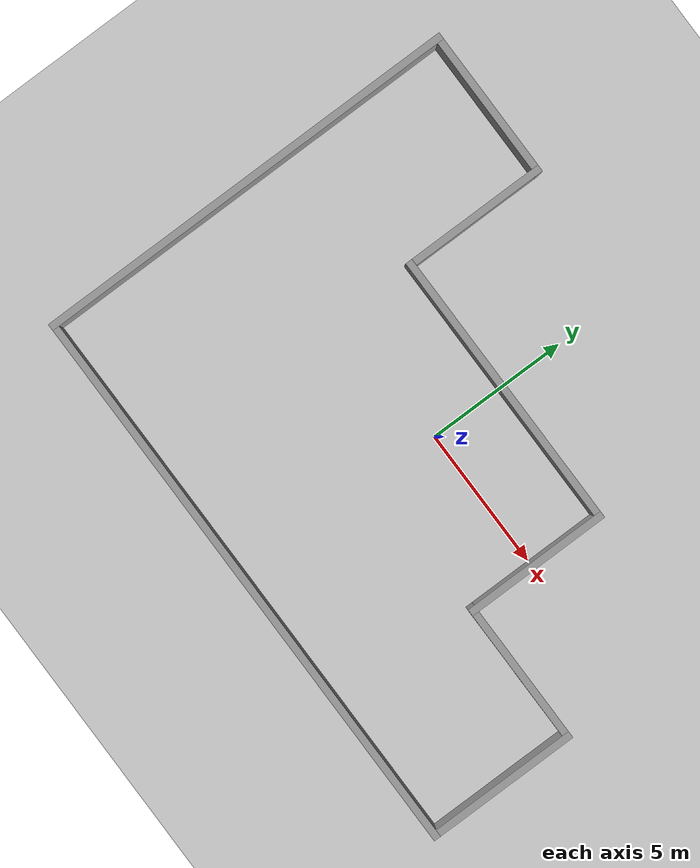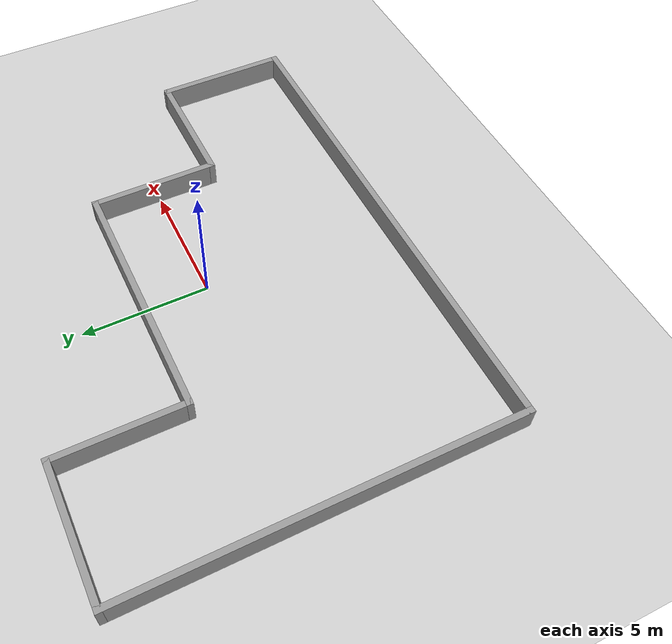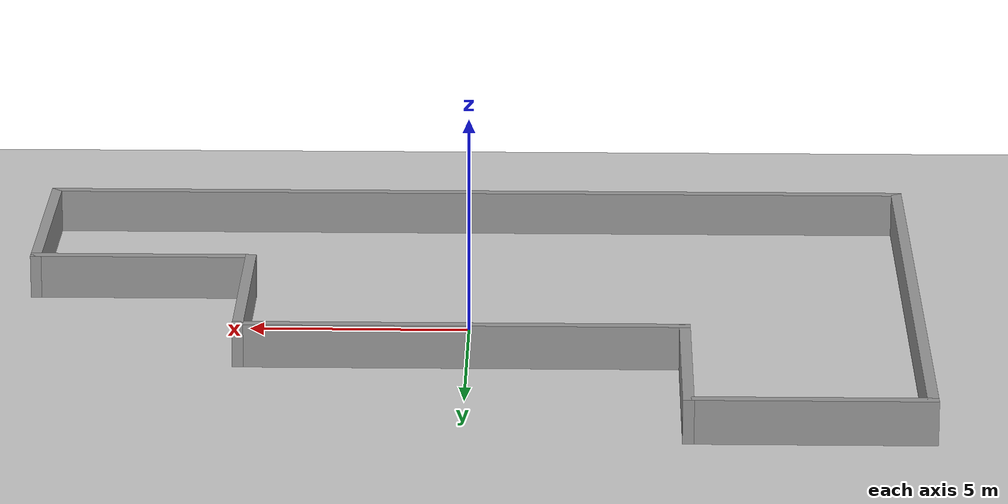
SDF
<?xml version="1.0" encoding="utf-8"?>
<sdf version='1.7'>
  <world name='default'>
    <gravity>0 0 -9.8</gravity>
    <magnetic_field>6e-06 2.3e-05 -4.2e-05</magnetic_field>
    <atmosphere type='adiabatic'/>
    <physics name='default_physics' default='0' type='ode'>
      <max_step_size>0.001</max_step_size>
      <real_time_factor>1</real_time_factor>
      <real_time_update_rate>1000</real_time_update_rate>
    </physics>

    <!-- A global light source -->
    <include>
      <uri>model://sun</uri>
    </include>
    <!-- A ground plane -->
    <include>
      <uri>model://ground_plane</uri>
    </include>

    <model name='asymmetric2'>
      <pose>0 0 0 0 0 0</pose>
      <link name='Wall_0'>
        <collision name='Wall_0_Collision'>
          <geometry>
            <box>
              <size>15.5 0.25 1</size>
            </box>
          </geometry>
          <pose>0 0 0.5 0 -0 0</pose>
        </collision>
        <visual name='Wall_0_Visual'>
          <pose>0 0 0.5 0 -0 0</pose>
          <geometry>
            <box>
              <size>15.5 0.25 1</size>
            </box>
          </geometry>
          <material>
            <script>
              <uri>file://media/materials/scripts/gazebo.material</uri>
              <name>Gazebo/Grey</name>
            </script>
            <ambient>1 1 1 1</ambient>
          </material>
          <meta>
            <layer>0</layer>
          </meta>
        </visual>
        <pose>-10.125 0 0 0 -0 -1.5708</pose>
      </link>
      <link name='Wall_10'>
        <collision name='Wall_10_Collision'>
          <geometry>
            <box>
              <size>5.25 0.25 1</size>
            </box>
          </geometry>
          <pose>0 0 0.5 0 -0 0</pose>
        </collision>
        <visual name='Wall_10_Visual'>
          <pose>0 0 0.5 0 -0 0</pose>
          <geometry>
            <box>
              <size>5.25 0.25 1</size>
            </box>
          </geometry>
          <material>
            <script>
              <uri>file://media/materials/scripts/gazebo.material</uri>
              <name>Gazebo/Grey</name>
            </script>
            <ambient>1 1 1 1</ambient>
          </material>
          <meta>
            <layer>0</layer>
          </meta>
        </visual>
        <pose>5.125 0.125 0 0 -0 1.5708</pose>
      </link>
      <link name='Wall_12'>
        <collision name='Wall_12_Collision'>
          <geometry>
            <box>
              <size>10.25 0.25 1</size>
            </box>
          </geometry>
          <pose>0 0 0.5 0 -0 0</pose>
        </collision>
        <visual name='Wall_12_Visual'>
          <pose>0 0 0.5 0 -0 0</pose>
          <geometry>
            <box>
              <size>10.25 0.25 1</size>
            </box>
          </geometry>
          <material>
            <script>
              <uri>file://media/materials/scripts/gazebo.material</uri>
              <name>Gazebo/Grey</name>
            </script>
            <ambient>1 1 1 1</ambient>
          </material>
          <meta>
            <layer>0</layer>
          </meta>
        </visual>
        <pose>0.125 2.625 0 0 -0 3.14159</pose>
      </link>
      <link name='Wall_14'>
        <collision name='Wall_14_Collision'>
          <geometry>
            <box>
              <size>5.25 0.25 1</size>
            </box>
          </geometry>
          <pose>0 0 0.5 0 -0 0</pose>
        </collision>
        <visual name='Wall_14_Visual'>
          <pose>0 0 0.5 0 -0 0</pose>
          <geometry>
            <box>
              <size>5.25 0.25 1</size>
            </box>
          </geometry>
          <material>
            <script>
              <uri>file://media/materials/scripts/gazebo.material</uri>
              <name>Gazebo/Grey</name>
            </script>
            <ambient>1 1 1 1</ambient>
          </material>
          <meta>
            <layer>0</layer>
          </meta>
        </visual>
        <pose>-4.875 5.125 0 0 -0 1.5708</pose>
      </link>
      <link name='Wall_16'>
        <collision name='Wall_16_Collision'>
          <geometry>
            <box>
              <size>5.5 0.25 1</size>
            </box>
          </geometry>
          <pose>0 0 0.5 0 -0 0</pose>
        </collision>
        <visual name='Wall_16_Visual'>
          <pose>0 0 0.5 0 -0 0</pose>
          <geometry>
            <box>
              <size>5.5 0.25 1</size>
            </box>
          </geometry>
          <material>
            <script>
              <uri>file://media/materials/scripts/gazebo.material</uri>
              <name>Gazebo/Grey</name>
            </script>
            <ambient>1 1 1 1</ambient>
          </material>
          <meta>
            <layer>0</layer>
          </meta>
        </visual>
        <pose>-7.5 7.625 0 0 -0 3.14159</pose>
      </link>
      <link name='Wall_4'>
        <collision name='Wall_4_Collision'>
          <geometry>
            <box>
              <size>20.5 0.25 1</size>
            </box>
          </geometry>
          <pose>0 0 0.5 0 -0 0</pose>
        </collision>
        <visual name='Wall_4_Visual'>
          <pose>0 0 0.5 0 -0 0</pose>
          <geometry>
            <box>
              <size>20.5 0.25 1</size>
            </box>
          </geometry>
          <material>
            <script>
              <uri>file://media/materials/scripts/gazebo.material</uri>
              <name>Gazebo/Grey</name>
            </script>
            <ambient>1 1 1 1</ambient>
          </material>
          <meta>
            <layer>0</layer>
          </meta>
        </visual>
        <pose>0 -7.625 0 0 -0 0</pose>
      </link>
      <link name='Wall_6'>
        <collision name='Wall_6_Collision'>
          <geometry>
            <box>
              <size>5.5 0.25 1</size>
            </box>
          </geometry>
          <pose>0 0 0.5 0 -0 0</pose>
        </collision>
        <visual name='Wall_6_Visual'>
          <pose>0 0 0.5 0 -0 0</pose>
          <geometry>
            <box>
              <size>5.5 0.25 1</size>
            </box>
          </geometry>
          <material>
            <script>
              <uri>file://media/materials/scripts/gazebo.material</uri>
              <name>Gazebo/Grey</name>
            </script>
            <ambient>1 1 1 1</ambient>
          </material>
          <meta>
            <layer>0</layer>
          </meta>
        </visual>
        <pose>10.125 -5 0 0 -0 1.5708</pose>
      </link>
      <link name='Wall_8'>
        <collision name='Wall_8_Collision'>
          <geometry>
            <box>
              <size>5.25 0.25 1</size>
            </box>
          </geometry>
          <pose>0 0 0.5 0 -0 0</pose>
        </collision>
        <visual name='Wall_8_Visual'>
          <pose>0 0 0.5 0 -0 0</pose>
          <geometry>
            <box>
              <size>5.25 0.25 1</size>
            </box>
          </geometry>
          <material>
            <script>
              <uri>file://media/materials/scripts/gazebo.material</uri>
              <name>Gazebo/Grey</name>
            </script>
            <ambient>1 1 1 1</ambient>
          </material>
          <meta>
            <layer>0</layer>
          </meta>
        </visual>
        <pose>7.625 -2.375 0 0 -0 3.14159</pose>
      </link>
      <static>1</static>
    </model>
  </world>
</sdf>
